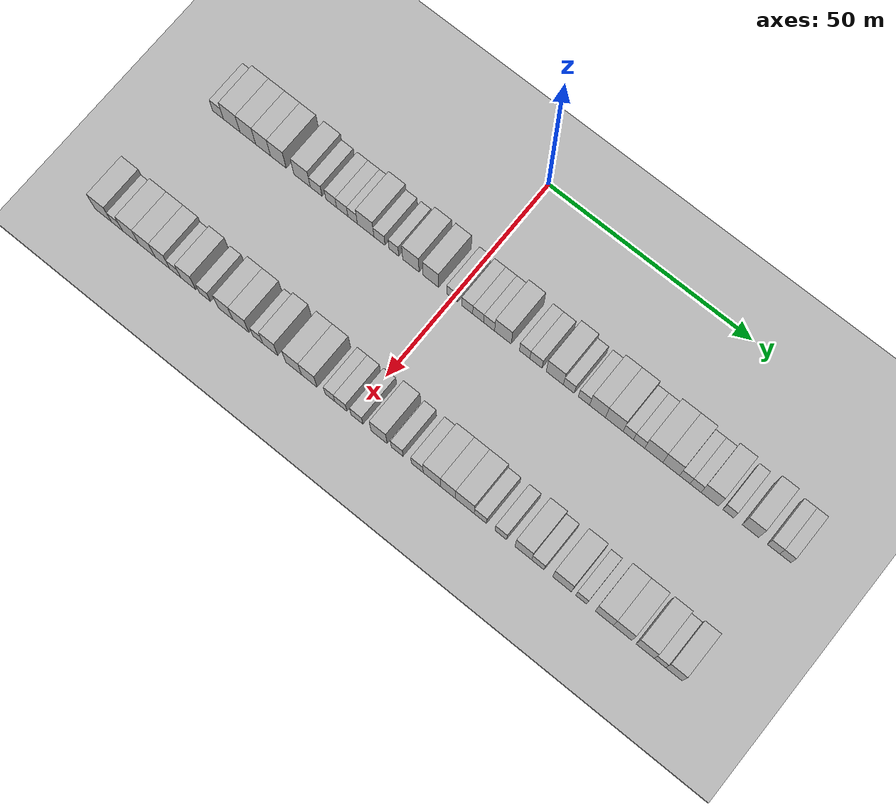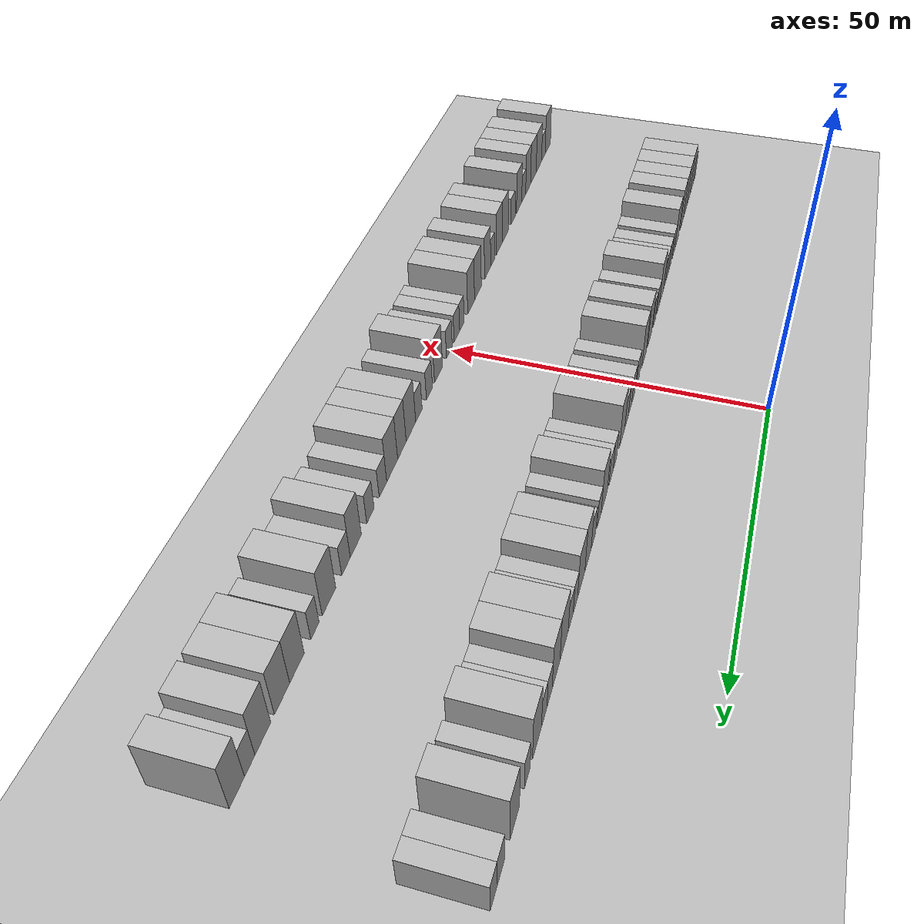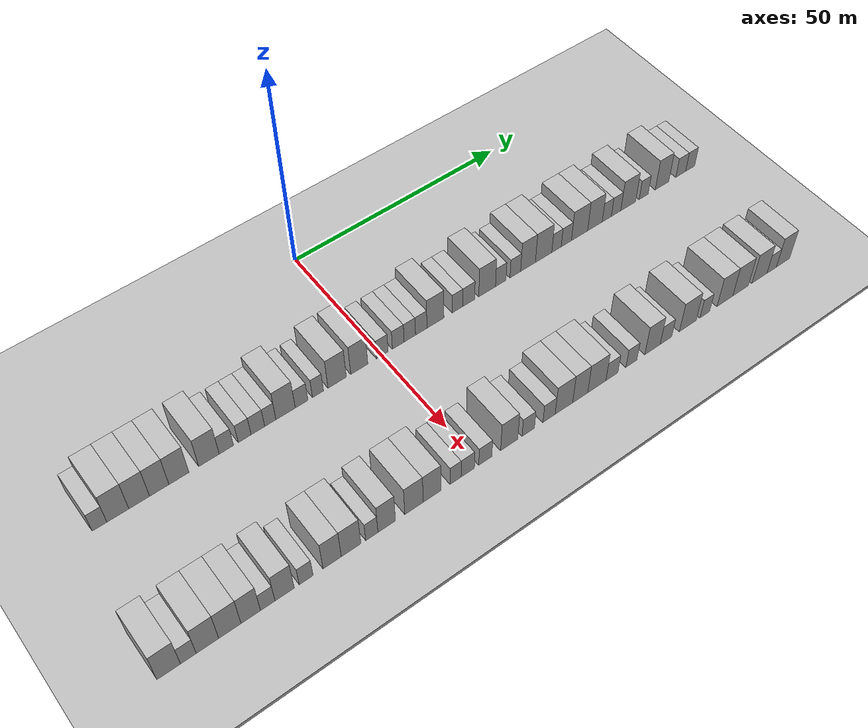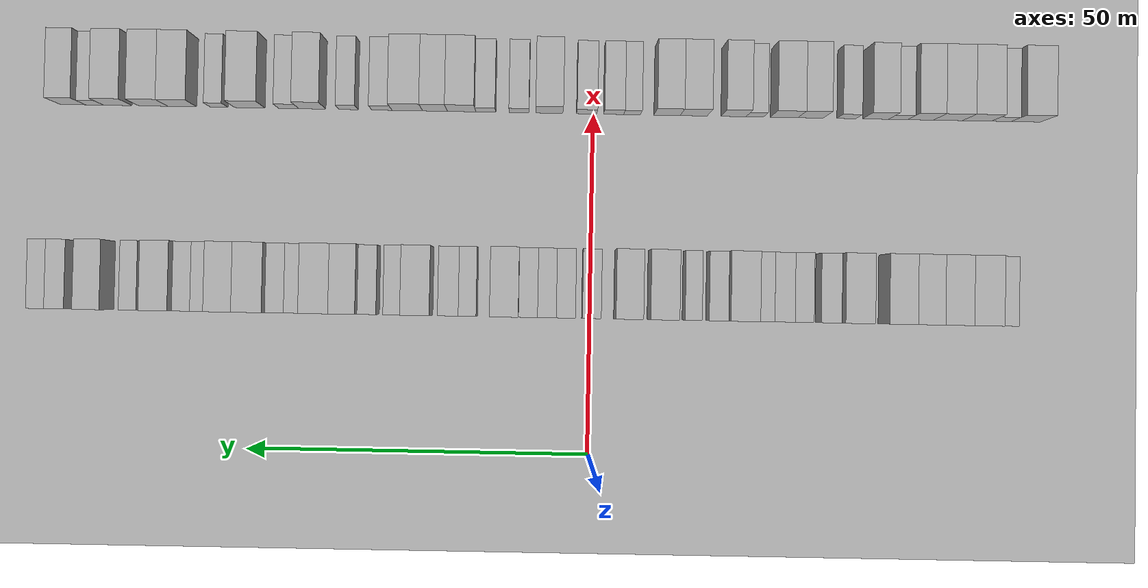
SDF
<sdf version="1.6">
 <world name="default">
  <include><name>ground_plane_1</name><uri>model://HANNAS_ground_plane</uri></include>
  <include>
   <name>ground_plane_2</name>
   <uri>model://HANNAS_ground_plane</uri>
   <pose>100 0 0  0 0 0</pose>
  </include>
  <model name="building_34">
   <static>1</static>
   <pose>25.0000 -59.8880 0 0.000000 0.000000 0.000000</pose>
   <link name="link">
    <pose>0 0 3.00 0 0 0</pose>
    <collision name="collision"><geometry><box><size>10.0000 2.8595 6.0000</size></box></geometry></collision>
    <visual name="visual">
     <cast_shadows>0</cast_shadows>
     <geometry><box><size>10.0000 2.8595 6.0000</size></box></geometry>
     <material>
      <script>
       <uri>model://HANNAS_wall/materials/scripts</uri>
       <uri>model://HANNAS_wall/materials/textures</uri>
       <name>vrc/HANNAS_wall</name>
      </script>
     </material>
    </visual>
   </link>
  </model>
  <model name="building_35">
   <static>1</static>
   <pose>25.0000 -56.3166 0 0.000000 0.000000 0.000000</pose>
   <link name="link">
    <pose>0 0 4.50 0 0 0</pose>
    <collision name="collision"><geometry><box><size>10.0000 4.2833 9.0000</size></box></geometry></collision>
    <visual name="visual">
     <cast_shadows>0</cast_shadows>
     <geometry><box><size>10.0000 4.2833 9.0000</size></box></geometry>
     <material>
      <script>
       <uri>model://HANNAS_wall/materials/scripts</uri>
       <uri>model://HANNAS_wall/materials/textures</uri>
       <name>vrc/HANNAS_wall</name>
      </script>
     </material>
    </visual>
   </link>
  </model>
  <model name="building_36">
   <static>1</static>
   <pose>25.0000 -52.1268 0 0.000000 0.000000 0.000000</pose>
   <link name="link">
    <pose>0 0 4.50 0 0 0</pose>
    <collision name="collision"><geometry><box><size>10.0000 4.0962 9.0000</size></box></geometry></collision>
    <visual name="visual">
     <cast_shadows>0</cast_shadows>
     <geometry><box><size>10.0000 4.0962 9.0000</size></box></geometry>
     <material>
      <script>
       <uri>model://HANNAS_wall/materials/scripts</uri>
       <uri>model://HANNAS_wall/materials/textures</uri>
       <name>vrc/HANNAS_wall</name>
      </script>
     </material>
    </visual>
   </link>
  </model>
  <model name="building_37">
   <static>1</static>
   <pose>25.0000 -48.1381 0 0.000000 0.000000 0.000000</pose>
   <link name="link">
    <pose>0 0 4.50 0 0 0</pose>
    <collision name="collision"><geometry><box><size>10.0000 3.8812 9.0000</size></box></geometry></collision>
    <visual name="visual">
     <cast_shadows>0</cast_shadows>
     <geometry><box><size>10.0000 3.8812 9.0000</size></box></geometry>
     <material>
      <script>
       <uri>model://HANNAS_wall/materials/scripts</uri>
       <uri>model://HANNAS_wall/materials/textures</uri>
       <name>vrc/HANNAS_wall</name>
      </script>
     </material>
    </visual>
   </link>
  </model>
  <model name="building_38">
   <static>1</static>
   <pose>25.0000 -44.1700 0 0.000000 0.000000 0.000000</pose>
   <link name="link">
    <pose>0 0 4.50 0 0 0</pose>
    <collision name="collision"><geometry><box><size>10.0000 4.0550 9.0000</size></box></geometry></collision>
    <visual name="visual">
     <cast_shadows>0</cast_shadows>
     <geometry><box><size>10.0000 4.0550 9.0000</size></box></geometry>
     <material>
      <script>
       <uri>model://HANNAS_wall/materials/scripts</uri>
       <uri>model://HANNAS_wall/materials/textures</uri>
       <name>vrc/HANNAS_wall</name>
      </script>
     </material>
    </visual>
   </link>
  </model>
  <model name="building_39">
   <static>1</static>
   <pose>25.0000 -38.0258 0 0.000000 0.000000 0.000000</pose>
   <link name="link">
    <pose>0 0 4.50 0 0 0</pose>
    <collision name="collision"><geometry><box><size>10.0000 4.2335 9.0000</size></box></geometry></collision>
    <visual name="visual">
     <cast_shadows>0</cast_shadows>
     <geometry><box><size>10.0000 4.2335 9.0000</size></box></geometry>
     <material>
      <script>
       <uri>model://HANNAS_wall/materials/scripts</uri>
       <uri>model://HANNAS_wall/materials/textures</uri>
       <name>vrc/HANNAS_wall</name>
      </script>
     </material>
    </visual>
   </link>
  </model>
  <model name="building_40">
   <static>1</static>
   <pose>25.0000 -34.4165 0 0.000000 0.000000 0.000000</pose>
   <link name="link">
    <pose>0 0 3.00 0 0 0</pose>
    <collision name="collision"><geometry><box><size>10.0000 2.9851 6.0000</size></box></geometry></collision>
    <visual name="visual">
     <cast_shadows>0</cast_shadows>
     <geometry><box><size>10.0000 2.9851 6.0000</size></box></geometry>
     <material>
      <script>
       <uri>model://HANNAS_wall/materials/scripts</uri>
       <uri>model://HANNAS_wall/materials/textures</uri>
       <name>vrc/HANNAS_wall</name>
      </script>
     </material>
    </visual>
   </link>
  </model>
  <model name="building_41">
   <static>1</static>
   <pose>25.0000 -30.5574 0 0.000000 0.000000 0.000000</pose>
   <link name="link">
    <pose>0 0 3.00 0 0 0</pose>
    <collision name="collision"><geometry><box><size>10.0000 2.7331 6.0000</size></box></geometry></collision>
    <visual name="visual">
     <cast_shadows>0</cast_shadows>
     <geometry><box><size>10.0000 2.7331 6.0000</size></box></geometry>
     <material>
      <script>
       <uri>model://HANNAS_wall/materials/scripts</uri>
       <uri>model://HANNAS_wall/materials/textures</uri>
       <name>vrc/HANNAS_wall</name>
      </script>
     </material>
    </visual>
   </link>
  </model>
  <model name="building_42">
   <static>1</static>
   <pose>25.0000 -27.7412 0 0.000000 0.000000 0.000000</pose>
   <link name="link">
    <pose>0 0 3.00 0 0 0</pose>
    <collision name="collision"><geometry><box><size>10.0000 2.8993 6.0000</size></box></geometry></collision>
    <visual name="visual">
     <cast_shadows>0</cast_shadows>
     <geometry><box><size>10.0000 2.8993 6.0000</size></box></geometry>
     <material>
      <script>
       <uri>model://HANNAS_wall/materials/scripts</uri>
       <uri>model://HANNAS_wall/materials/textures</uri>
       <name>vrc/HANNAS_wall</name>
      </script>
     </material>
    </visual>
   </link>
  </model>
  <model name="building_43">
   <static>1</static>
   <pose>25.0000 -25.0822 0 0.000000 0.000000 0.000000</pose>
   <link name="link">
    <pose>0 0 3.00 0 0 0</pose>
    <collision name="collision"><geometry><box><size>10.0000 2.4186 6.0000</size></box></geometry></collision>
    <visual name="visual">
     <cast_shadows>0</cast_shadows>
     <geometry><box><size>10.0000 2.4186 6.0000</size></box></geometry>
     <material>
      <script>
       <uri>model://HANNAS_wall/materials/scripts</uri>
       <uri>model://HANNAS_wall/materials/textures</uri>
       <name>vrc/HANNAS_wall</name>
      </script>
     </material>
    </visual>
   </link>
  </model>
  <model name="building_44">
   <static>1</static>
   <pose>25.0000 -21.7755 0 0.000000 0.000000 0.000000</pose>
   <link name="link">
    <pose>0 0 4.50 0 0 0</pose>
    <collision name="collision"><geometry><box><size>10.0000 4.1948 9.0000</size></box></geometry></collision>
    <visual name="visual">
     <cast_shadows>0</cast_shadows>
     <geometry><box><size>10.0000 4.1948 9.0000</size></box></geometry>
     <material>
      <script>
       <uri>model://HANNAS_wall/materials/scripts</uri>
       <uri>model://HANNAS_wall/materials/textures</uri>
       <name>vrc/HANNAS_wall</name>
      </script>
     </material>
    </visual>
   </link>
  </model>
  <model name="building_45">
   <static>1</static>
   <pose>25.0000 -18.2840 0 0.000000 0.000000 0.000000</pose>
   <link name="link">
    <pose>0 0 3.00 0 0 0</pose>
    <collision name="collision"><geometry><box><size>10.0000 2.7881 6.0000</size></box></geometry></collision>
    <visual name="visual">
     <cast_shadows>0</cast_shadows>
     <geometry><box><size>10.0000 2.7881 6.0000</size></box></geometry>
     <material>
      <script>
       <uri>model://HANNAS_wall/materials/scripts</uri>
       <uri>model://HANNAS_wall/materials/textures</uri>
       <name>vrc/HANNAS_wall</name>
      </script>
     </material>
    </visual>
   </link>
  </model>
  <model name="building_46">
   <static>1</static>
   <pose>25.0000 -14.6642 0 0.000000 0.000000 0.000000</pose>
   <link name="link">
    <pose>0 0 3.00 0 0 0</pose>
    <collision name="collision"><geometry><box><size>10.0000 2.4515 6.0000</size></box></geometry></collision>
    <visual name="visual">
     <cast_shadows>0</cast_shadows>
     <geometry><box><size>10.0000 2.4515 6.0000</size></box></geometry>
     <material>
      <script>
       <uri>model://HANNAS_wall/materials/scripts</uri>
       <uri>model://HANNAS_wall/materials/textures</uri>
       <name>vrc/HANNAS_wall</name>
      </script>
     </material>
    </visual>
   </link>
  </model>
  <model name="building_47">
   <static>1</static>
   <pose>25.0000 -10.3760 0 0.000000 0.000000 0.000000</pose>
   <link name="link">
    <pose>0 0 4.50 0 0 0</pose>
    <collision name="collision"><geometry><box><size>10.0000 4.1250 9.0000</size></box></geometry></collision>
    <visual name="visual">
     <cast_shadows>0</cast_shadows>
     <geometry><box><size>10.0000 4.1250 9.0000</size></box></geometry>
     <material>
      <script>
       <uri>model://HANNAS_wall/materials/scripts</uri>
       <uri>model://HANNAS_wall/materials/textures</uri>
       <name>vrc/HANNAS_wall</name>
      </script>
     </material>
    </visual>
   </link>
  </model>
  <model name="building_48">
   <static>1</static>
   <pose>25.0000 -5.3596 0 0.000000 0.000000 0.000000</pose>
   <link name="link">
    <pose>0 0 4.50 0 0 0</pose>
    <collision name="collision"><geometry><box><size>10.0000 3.9077 9.0000</size></box></geometry></collision>
    <visual name="visual">
     <cast_shadows>0</cast_shadows>
     <geometry><box><size>10.0000 3.9077 9.0000</size></box></geometry>
     <material>
      <script>
       <uri>model://HANNAS_wall/materials/scripts</uri>
       <uri>model://HANNAS_wall/materials/textures</uri>
       <name>vrc/HANNAS_wall</name>
      </script>
     </material>
    </visual>
   </link>
  </model>
  <model name="building_49">
   <static>1</static>
   <pose>25.0000 -0.0575 0 0.000000 0.000000 0.000000</pose>
   <link name="link">
    <pose>0 0 3.00 0 0 0</pose>
    <collision name="collision"><geometry><box><size>10.0000 2.6964 6.0000</size></box></geometry></collision>
    <visual name="visual">
     <cast_shadows>0</cast_shadows>
     <geometry><box><size>10.0000 2.6964 6.0000</size></box></geometry>
     <material>
      <script>
       <uri>model://HANNAS_wall/materials/scripts</uri>
       <uri>model://HANNAS_wall/materials/textures</uri>
       <name>vrc/HANNAS_wall</name>
      </script>
     </material>
    </visual>
   </link>
  </model>
  <model name="building_50">
   <static>1</static>
   <pose>25.0000 3.6659 0 0.000000 0.000000 0.000000</pose>
   <link name="link">
    <pose>0 0 3.00 0 0 0</pose>
    <collision name="collision"><geometry><box><size>10.0000 2.7506 6.0000</size></box></geometry></collision>
    <visual name="visual">
     <cast_shadows>0</cast_shadows>
     <geometry><box><size>10.0000 2.7506 6.0000</size></box></geometry>
     <material>
      <script>
       <uri>model://HANNAS_wall/materials/scripts</uri>
       <uri>model://HANNAS_wall/materials/textures</uri>
       <name>vrc/HANNAS_wall</name>
      </script>
     </material>
    </visual>
   </link>
  </model>
  <model name="building_51">
   <static>1</static>
   <pose>25.0000 6.3850 0 0.000000 0.000000 0.000000</pose>
   <link name="link">
    <pose>0 0 3.00 0 0 0</pose>
    <collision name="collision"><geometry><box><size>10.0000 2.6876 6.0000</size></box></geometry></collision>
    <visual name="visual">
     <cast_shadows>0</cast_shadows>
     <geometry><box><size>10.0000 2.6876 6.0000</size></box></geometry>
     <material>
      <script>
       <uri>model://HANNAS_wall/materials/scripts</uri>
       <uri>model://HANNAS_wall/materials/textures</uri>
       <name>vrc/HANNAS_wall</name>
      </script>
     </material>
    </visual>
   </link>
  </model>
  <model name="building_52">
   <static>1</static>
   <pose>25.0000 9.0959 0 0.000000 0.000000 0.000000</pose>
   <link name="link">
    <pose>0 0 3.00 0 0 0</pose>
    <collision name="collision"><geometry><box><size>10.0000 2.7342 6.0000</size></box></geometry></collision>
    <visual name="visual">
     <cast_shadows>0</cast_shadows>
     <geometry><box><size>10.0000 2.7342 6.0000</size></box></geometry>
     <material>
      <script>
       <uri>model://HANNAS_wall/materials/scripts</uri>
       <uri>model://HANNAS_wall/materials/textures</uri>
       <name>vrc/HANNAS_wall</name>
      </script>
     </material>
    </visual>
   </link>
  </model>
  <model name="building_53">
   <static>1</static>
   <pose>25.0000 12.5020 0 0.000000 0.000000 0.000000</pose>
   <link name="link">
    <pose>0 0 4.50 0 0 0</pose>
    <collision name="collision"><geometry><box><size>10.0000 4.0780 9.0000</size></box></geometry></collision>
    <visual name="visual">
     <cast_shadows>0</cast_shadows>
     <geometry><box><size>10.0000 4.0780 9.0000</size></box></geometry>
     <material>
      <script>
       <uri>model://HANNAS_wall/materials/scripts</uri>
       <uri>model://HANNAS_wall/materials/textures</uri>
       <name>vrc/HANNAS_wall</name>
      </script>
     </material>
    </visual>
   </link>
  </model>
  <model name="building_54">
   <static>1</static>
   <pose>25.0000 17.8254 0 0.000000 0.000000 0.000000</pose>
   <link name="link">
    <pose>0 0 3.00 0 0 0</pose>
    <collision name="collision"><geometry><box><size>10.0000 2.5689 6.0000</size></box></geometry></collision>
    <visual name="visual">
     <cast_shadows>0</cast_shadows>
     <geometry><box><size>10.0000 2.5689 6.0000</size></box></geometry>
     <material>
      <script>
       <uri>model://HANNAS_wall/materials/scripts</uri>
       <uri>model://HANNAS_wall/materials/textures</uri>
       <name>vrc/HANNAS_wall</name>
      </script>
     </material>
    </visual>
   </link>
  </model>
  <model name="building_55">
   <static>1</static>
   <pose>25.0000 20.5942 0 0.000000 0.000000 0.000000</pose>
   <link name="link">
    <pose>0 0 3.00 0 0 0</pose>
    <collision name="collision"><geometry><box><size>10.0000 2.9687 6.0000</size></box></geometry></collision>
    <visual name="visual">
     <cast_shadows>0</cast_shadows>
     <geometry><box><size>10.0000 2.9687 6.0000</size></box></geometry>
     <material>
      <script>
       <uri>model://HANNAS_wall/materials/scripts</uri>
       <uri>model://HANNAS_wall/materials/textures</uri>
       <name>vrc/HANNAS_wall</name>
      </script>
     </material>
    </visual>
   </link>
  </model>
  <model name="building_56">
   <static>1</static>
   <pose>25.0000 25.1673 0 0.000000 0.000000 0.000000</pose>
   <link name="link">
    <pose>0 0 4.50 0 0 0</pose>
    <collision name="collision"><geometry><box><size>10.0000 4.1775 9.0000</size></box></geometry></collision>
    <visual name="visual">
     <cast_shadows>0</cast_shadows>
     <geometry><box><size>10.0000 4.1775 9.0000</size></box></geometry>
     <material>
      <script>
       <uri>model://HANNAS_wall/materials/scripts</uri>
       <uri>model://HANNAS_wall/materials/textures</uri>
       <name>vrc/HANNAS_wall</name>
      </script>
     </material>
    </visual>
   </link>
  </model>
  <model name="building_57">
   <static>1</static>
   <pose>25.0000 28.5802 0 0.000000 0.000000 0.000000</pose>
   <link name="link">
    <pose>0 0 3.00 0 0 0</pose>
    <collision name="collision"><geometry><box><size>10.0000 2.6483 6.0000</size></box></geometry></collision>
    <visual name="visual">
     <cast_shadows>0</cast_shadows>
     <geometry><box><size>10.0000 2.6483 6.0000</size></box></geometry>
     <material>
      <script>
       <uri>model://HANNAS_wall/materials/scripts</uri>
       <uri>model://HANNAS_wall/materials/textures</uri>
       <name>vrc/HANNAS_wall</name>
      </script>
     </material>
    </visual>
   </link>
  </model>
  <model name="building_58">
   <static>1</static>
   <pose>25.0000 32.2632 0 0.000000 0.000000 0.000000</pose>
   <link name="link">
    <pose>0 0 3.00 0 0 0</pose>
    <collision name="collision"><geometry><box><size>10.0000 2.7177 6.0000</size></box></geometry></collision>
    <visual name="visual">
     <cast_shadows>0</cast_shadows>
     <geometry><box><size>10.0000 2.7177 6.0000</size></box></geometry>
     <material>
      <script>
       <uri>model://HANNAS_wall/materials/scripts</uri>
       <uri>model://HANNAS_wall/materials/textures</uri>
       <name>vrc/HANNAS_wall</name>
      </script>
     </material>
    </visual>
   </link>
  </model>
  <model name="building_59">
   <static>1</static>
   <pose>25.0000 35.5286 0 0.000000 0.000000 0.000000</pose>
   <link name="link">
    <pose>0 0 4.50 0 0 0</pose>
    <collision name="collision"><geometry><box><size>10.0000 3.8130 9.0000</size></box></geometry></collision>
    <visual name="visual">
     <cast_shadows>0</cast_shadows>
     <geometry><box><size>10.0000 3.8130 9.0000</size></box></geometry>
     <material>
      <script>
       <uri>model://HANNAS_wall/materials/scripts</uri>
       <uri>model://HANNAS_wall/materials/textures</uri>
       <name>vrc/HANNAS_wall</name>
      </script>
     </material>
    </visual>
   </link>
  </model>
  <model name="building_60">
   <static>1</static>
   <pose>25.0000 39.5603 0 0.000000 0.000000 0.000000</pose>
   <link name="link">
    <pose>0 0 4.50 0 0 0</pose>
    <collision name="collision"><geometry><box><size>10.0000 4.2505 9.0000</size></box></geometry></collision>
    <visual name="visual">
     <cast_shadows>0</cast_shadows>
     <geometry><box><size>10.0000 4.2505 9.0000</size></box></geometry>
     <material>
      <script>
       <uri>model://HANNAS_wall/materials/scripts</uri>
       <uri>model://HANNAS_wall/materials/textures</uri>
       <name>vrc/HANNAS_wall</name>
      </script>
     </material>
    </visual>
   </link>
  </model>
  <model name="building_61">
   <static>1</static>
   <pose>25.0000 42.9211 0 0.000000 0.000000 0.000000</pose>
   <link name="link">
    <pose>0 0 3.00 0 0 0</pose>
    <collision name="collision"><geometry><box><size>10.0000 2.4709 6.0000</size></box></geometry></collision>
    <visual name="visual">
     <cast_shadows>0</cast_shadows>
     <geometry><box><size>10.0000 2.4709 6.0000</size></box></geometry>
     <material>
      <script>
       <uri>model://HANNAS_wall/materials/scripts</uri>
       <uri>model://HANNAS_wall/materials/textures</uri>
       <name>vrc/HANNAS_wall</name>
      </script>
     </material>
    </visual>
   </link>
  </model>
  <model name="building_62">
   <static>1</static>
   <pose>25.0000 45.5056 0 0.000000 0.000000 0.000000</pose>
   <link name="link">
    <pose>0 0 3.00 0 0 0</pose>
    <collision name="collision"><geometry><box><size>10.0000 2.6981 6.0000</size></box></geometry></collision>
    <visual name="visual">
     <cast_shadows>0</cast_shadows>
     <geometry><box><size>10.0000 2.6981 6.0000</size></box></geometry>
     <material>
      <script>
       <uri>model://HANNAS_wall/materials/scripts</uri>
       <uri>model://HANNAS_wall/materials/textures</uri>
       <name>vrc/HANNAS_wall</name>
      </script>
     </material>
    </visual>
   </link>
  </model>
  <model name="building_63">
   <static>1</static>
   <pose>25.0000 49.0194 0 0.000000 0.000000 0.000000</pose>
   <link name="link">
    <pose>0 0 4.50 0 0 0</pose>
    <collision name="collision"><geometry><box><size>10.0000 4.3296 9.0000</size></box></geometry></collision>
    <visual name="visual">
     <cast_shadows>0</cast_shadows>
     <geometry><box><size>10.0000 4.3296 9.0000</size></box></geometry>
     <material>
      <script>
       <uri>model://HANNAS_wall/materials/scripts</uri>
       <uri>model://HANNAS_wall/materials/textures</uri>
       <name>vrc/HANNAS_wall</name>
      </script>
     </material>
    </visual>
   </link>
  </model>
  <model name="building_64">
   <static>1</static>
   <pose>25.0000 53.1557 0 0.000000 0.000000 0.000000</pose>
   <link name="link">
    <pose>0 0 4.50 0 0 0</pose>
    <collision name="collision"><geometry><box><size>10.0000 3.9429 9.0000</size></box></geometry></collision>
    <visual name="visual">
     <cast_shadows>0</cast_shadows>
     <geometry><box><size>10.0000 3.9429 9.0000</size></box></geometry>
     <material>
      <script>
       <uri>model://HANNAS_wall/materials/scripts</uri>
       <uri>model://HANNAS_wall/materials/textures</uri>
       <name>vrc/HANNAS_wall</name>
      </script>
     </material>
    </visual>
   </link>
  </model>
  <model name="building_65">
   <static>1</static>
   <pose>25.0000 56.3650 0 0.000000 0.000000 0.000000</pose>
   <link name="link">
    <pose>0 0 3.00 0 0 0</pose>
    <collision name="collision"><geometry><box><size>10.0000 2.4758 6.0000</size></box></geometry></collision>
    <visual name="visual">
     <cast_shadows>0</cast_shadows>
     <geometry><box><size>10.0000 2.4758 6.0000</size></box></geometry>
     <material>
      <script>
       <uri>model://HANNAS_wall/materials/scripts</uri>
       <uri>model://HANNAS_wall/materials/textures</uri>
       <name>vrc/HANNAS_wall</name>
      </script>
     </material>
    </visual>
   </link>
  </model>
  <model name="building_66">
   <static>1</static>
   <pose>25.0000 58.9011 0 0.000000 0.000000 0.000000</pose>
   <link name="link">
    <pose>0 0 3.00 0 0 0</pose>
    <collision name="collision"><geometry><box><size>10.0000 2.5965 6.0000</size></box></geometry></collision>
    <visual name="visual">
     <cast_shadows>0</cast_shadows>
     <geometry><box><size>10.0000 2.5965 6.0000</size></box></geometry>
     <material>
      <script>
       <uri>model://HANNAS_wall/materials/scripts</uri>
       <uri>model://HANNAS_wall/materials/textures</uri>
       <name>vrc/HANNAS_wall</name>
      </script>
     </material>
    </visual>
   </link>
  </model>
  <model name="building_67">
   <static>1</static>
   <pose>25.0000 62.2510 0 0.000000 0.000000 0.000000</pose>
   <link name="link">
    <pose>0 0 4.50 0 0 0</pose>
    <collision name="collision"><geometry><box><size>10.0000 4.1032 9.0000</size></box></geometry></collision>
    <visual name="visual">
     <cast_shadows>0</cast_shadows>
     <geometry><box><size>10.0000 4.1032 9.0000</size></box></geometry>
     <material>
      <script>
       <uri>model://HANNAS_wall/materials/scripts</uri>
       <uri>model://HANNAS_wall/materials/textures</uri>
       <name>vrc/HANNAS_wall</name>
      </script>
     </material>
    </visual>
   </link>
  </model>
  <model name="building_68">
   <static>1</static>
   <pose>25.0000 66.5602 0 0.000000 0.000000 0.000000</pose>
   <link name="link">
    <pose>0 0 3.00 0 0 0</pose>
    <collision name="collision"><geometry><box><size>10.0000 2.5153 6.0000</size></box></geometry></collision>
    <visual name="visual">
     <cast_shadows>0</cast_shadows>
     <geometry><box><size>10.0000 2.5153 6.0000</size></box></geometry>
     <material>
      <script>
       <uri>model://HANNAS_wall/materials/scripts</uri>
       <uri>model://HANNAS_wall/materials/textures</uri>
       <name>vrc/HANNAS_wall</name>
      </script>
     </material>
    </visual>
   </link>
  </model>
  <model name="building_69">
   <static>1</static>
   <pose>25.0000 71.7442 0 0.000000 0.000000 0.000000</pose>
   <link name="link">
    <pose>0 0 4.50 0 0 0</pose>
    <collision name="collision"><geometry><box><size>10.0000 3.8527 9.0000</size></box></geometry></collision>
    <visual name="visual">
     <cast_shadows>0</cast_shadows>
     <geometry><box><size>10.0000 3.8527 9.0000</size></box></geometry>
     <material>
      <script>
       <uri>model://HANNAS_wall/materials/scripts</uri>
       <uri>model://HANNAS_wall/materials/textures</uri>
       <name>vrc/HANNAS_wall</name>
      </script>
     </material>
    </visual>
   </link>
  </model>
  <model name="building_70">
   <static>1</static>
   <pose>25.0000 77.0925 0 0.000000 0.000000 0.000000</pose>
   <link name="link">
    <pose>0 0 3.00 0 0 0</pose>
    <collision name="collision"><geometry><box><size>10.0000 2.8439 6.0000</size></box></geometry></collision>
    <visual name="visual">
     <cast_shadows>0</cast_shadows>
     <geometry><box><size>10.0000 2.8439 6.0000</size></box></geometry>
     <material>
      <script>
       <uri>model://HANNAS_wall/materials/scripts</uri>
       <uri>model://HANNAS_wall/materials/textures</uri>
       <name>vrc/HANNAS_wall</name>
      </script>
     </material>
    </visual>
   </link>
  </model>
  <model name="building_71">
   <static>1</static>
   <pose>25.0000 79.8165 0 0.000000 0.000000 0.000000</pose>
   <link name="link">
    <pose>0 0 3.00 0 0 0</pose>
    <collision name="collision"><geometry><box><size>10.0000 2.6042 6.0000</size></box></geometry></collision>
    <visual name="visual">
     <cast_shadows>0</cast_shadows>
     <geometry><box><size>10.0000 2.6042 6.0000</size></box></geometry>
     <material>
      <script>
       <uri>model://HANNAS_wall/materials/scripts</uri>
       <uri>model://HANNAS_wall/materials/textures</uri>
       <name>vrc/HANNAS_wall</name>
      </script>
     </material>
    </visual>
   </link>
  </model>
  <model name="building_150">
   <static>1</static>
   <pose>55.0000 -63.5235 0 0.000000 0.000000 0.000000</pose>
   <link name="link">
    <pose>0 0 4.50 0 0 0</pose>
    <collision name="collision"><geometry><box><size>10.0000 4.3285 9.0000</size></box></geometry></collision>
    <visual name="visual">
     <cast_shadows>0</cast_shadows>
     <geometry><box><size>10.0000 4.3285 9.0000</size></box></geometry>
     <material>
      <script>
       <uri>model://HANNAS_wall/materials/scripts</uri>
       <uri>model://HANNAS_wall/materials/textures</uri>
       <name>vrc/HANNAS_wall</name>
      </script>
     </material>
    </visual>
   </link>
  </model>
  <model name="building_151">
   <static>1</static>
   <pose>55.0000 -59.9022 0 0.000000 0.000000 0.000000</pose>
   <link name="link">
    <pose>0 0 3.00 0 0 0</pose>
    <collision name="collision"><geometry><box><size>10.0000 2.9142 6.0000</size></box></geometry></collision>
    <visual name="visual">
     <cast_shadows>0</cast_shadows>
     <geometry><box><size>10.0000 2.9142 6.0000</size></box></geometry>
     <material>
      <script>
       <uri>model://HANNAS_wall/materials/scripts</uri>
       <uri>model://HANNAS_wall/materials/textures</uri>
       <name>vrc/HANNAS_wall</name>
      </script>
     </material>
    </visual>
   </link>
  </model>
  <model name="building_152">
   <static>1</static>
   <pose>55.0000 -56.3239 0 0.000000 0.000000 0.000000</pose>
   <link name="link">
    <pose>0 0 4.50 0 0 0</pose>
    <collision name="collision"><geometry><box><size>10.0000 4.2424 9.0000</size></box></geometry></collision>
    <visual name="visual">
     <cast_shadows>0</cast_shadows>
     <geometry><box><size>10.0000 4.2424 9.0000</size></box></geometry>
     <material>
      <script>
       <uri>model://HANNAS_wall/materials/scripts</uri>
       <uri>model://HANNAS_wall/materials/textures</uri>
       <name>vrc/HANNAS_wall</name>
      </script>
     </material>
    </visual>
   </link>
  </model>
  <model name="building_153">
   <static>1</static>
   <pose>55.0000 -52.0752 0 0.000000 0.000000 0.000000</pose>
   <link name="link">
    <pose>0 0 4.50 0 0 0</pose>
    <collision name="collision"><geometry><box><size>10.0000 4.2550 9.0000</size></box></geometry></collision>
    <visual name="visual">
     <cast_shadows>0</cast_shadows>
     <geometry><box><size>10.0000 4.2550 9.0000</size></box></geometry>
     <material>
      <script>
       <uri>model://HANNAS_wall/materials/scripts</uri>
       <uri>model://HANNAS_wall/materials/textures</uri>
       <name>vrc/HANNAS_wall</name>
      </script>
     </material>
    </visual>
   </link>
  </model>
  <model name="building_154">
   <static>1</static>
   <pose>55.0000 -48.0642 0 0.000000 0.000000 0.000000</pose>
   <link name="link">
    <pose>0 0 4.50 0 0 0</pose>
    <collision name="collision"><geometry><box><size>10.0000 3.7671 9.0000</size></box></geometry></collision>
    <visual name="visual">
     <cast_shadows>0</cast_shadows>
     <geometry><box><size>10.0000 3.7671 9.0000</size></box></geometry>
     <material>
      <script>
       <uri>model://HANNAS_wall/materials/scripts</uri>
       <uri>model://HANNAS_wall/materials/textures</uri>
       <name>vrc/HANNAS_wall</name>
      </script>
     </material>
    </visual>
   </link>
  </model>
  <model name="building_155">
   <static>1</static>
   <pose>55.0000 -44.7633 0 0.000000 0.000000 0.000000</pose>
   <link name="link">
    <pose>0 0 3.00 0 0 0</pose>
    <collision name="collision"><geometry><box><size>10.0000 2.8347 6.0000</size></box></geometry></collision>
    <visual name="visual">
     <cast_shadows>0</cast_shadows>
     <geometry><box><size>10.0000 2.8347 6.0000</size></box></geometry>
     <material>
      <script>
       <uri>model://HANNAS_wall/materials/scripts</uri>
       <uri>model://HANNAS_wall/materials/textures</uri>
       <name>vrc/HANNAS_wall</name>
      </script>
     </material>
    </visual>
   </link>
  </model>
  <model name="building_156">
   <static>1</static>
   <pose>55.0000 -41.4434 0 0.000000 0.000000 0.000000</pose>
   <link name="link">
    <pose>0 0 4.50 0 0 0</pose>
    <collision name="collision"><geometry><box><size>10.0000 3.8053 9.0000</size></box></geometry></collision>
    <visual name="visual">
     <cast_shadows>0</cast_shadows>
     <geometry><box><size>10.0000 3.8053 9.0000</size></box></geometry>
     <material>
      <script>
       <uri>model://HANNAS_wall/materials/scripts</uri>
       <uri>model://HANNAS_wall/materials/textures</uri>
       <name>vrc/HANNAS_wall</name>
      </script>
     </material>
    </visual>
   </link>
  </model>
  <model name="building_157">
   <static>1</static>
   <pose>55.0000 -37.1497 0 0.000000 0.000000 0.000000</pose>
   <link name="link">
    <pose>0 0 3.00 0 0 0</pose>
    <collision name="collision"><geometry><box><size>10.0000 2.7821 6.0000</size></box></geometry></collision>
    <visual name="visual">
     <cast_shadows>0</cast_shadows>
     <geometry><box><size>10.0000 2.7821 6.0000</size></box></geometry>
     <material>
      <script>
       <uri>model://HANNAS_wall/materials/scripts</uri>
       <uri>model://HANNAS_wall/materials/textures</uri>
       <name>vrc/HANNAS_wall</name>
      </script>
     </material>
    </visual>
   </link>
  </model>
  <model name="building_158">
   <static>1</static>
   <pose>55.0000 -31.8937 0 0.000000 0.000000 0.000000</pose>
   <link name="link">
    <pose>0 0 4.50 0 0 0</pose>
    <collision name="collision"><geometry><box><size>10.0000 3.7298 9.0000</size></box></geometry></collision>
    <visual name="visual">
     <cast_shadows>0</cast_shadows>
     <geometry><box><size>10.0000 3.7298 9.0000</size></box></geometry>
     <material>
      <script>
       <uri>model://HANNAS_wall/materials/scripts</uri>
       <uri>model://HANNAS_wall/materials/textures</uri>
       <name>vrc/HANNAS_wall</name>
      </script>
     </material>
    </visual>
   </link>
  </model>
  <model name="building_159">
   <static>1</static>
   <pose>55.0000 -28.0021 0 0.000000 0.000000 0.000000</pose>
   <link name="link">
    <pose>0 0 4.50 0 0 0</pose>
    <collision name="collision"><geometry><box><size>10.0000 4.0533 9.0000</size></box></geometry></collision>
    <visual name="visual">
     <cast_shadows>0</cast_shadows>
     <geometry><box><size>10.0000 4.0533 9.0000</size></box></geometry>
     <material>
      <script>
       <uri>model://HANNAS_wall/materials/scripts</uri>
       <uri>model://HANNAS_wall/materials/textures</uri>
       <name>vrc/HANNAS_wall</name>
      </script>
     </material>
    </visual>
   </link>
  </model>
  <model name="building_160">
   <static>1</static>
   <pose>55.0000 -23.6914 0 0.000000 0.000000 0.000000</pose>
   <link name="link">
    <pose>0 0 3.00 0 0 0</pose>
    <collision name="collision"><geometry><box><size>10.0000 2.5681 6.0000</size></box></geometry></collision>
    <visual name="visual">
     <cast_shadows>0</cast_shadows>
     <geometry><box><size>10.0000 2.5681 6.0000</size></box></geometry>
     <material>
      <script>
       <uri>model://HANNAS_wall/materials/scripts</uri>
       <uri>model://HANNAS_wall/materials/textures</uri>
       <name>vrc/HANNAS_wall</name>
      </script>
     </material>
    </visual>
   </link>
  </model>
  <model name="building_161">
   <static>1</static>
   <pose>55.0000 -20.5537 0 0.000000 0.000000 0.000000</pose>
   <link name="link">
    <pose>0 0 4.50 0 0 0</pose>
    <collision name="collision"><geometry><box><size>10.0000 3.7073 9.0000</size></box></geometry></collision>
    <visual name="visual">
     <cast_shadows>0</cast_shadows>
     <geometry><box><size>10.0000 3.7073 9.0000</size></box></geometry>
     <material>
      <script>
       <uri>model://HANNAS_wall/materials/scripts</uri>
       <uri>model://HANNAS_wall/materials/textures</uri>
       <name>vrc/HANNAS_wall</name>
      </script>
     </material>
    </visual>
   </link>
  </model>
  <model name="building_162">
   <static>1</static>
   <pose>55.0000 -14.7100 0 0.000000 0.000000 0.000000</pose>
   <link name="link">
    <pose>0 0 4.50 0 0 0</pose>
    <collision name="collision"><geometry><box><size>10.0000 3.9802 9.0000</size></box></geometry></collision>
    <visual name="visual">
     <cast_shadows>0</cast_shadows>
     <geometry><box><size>10.0000 3.9802 9.0000</size></box></geometry>
     <material>
      <script>
       <uri>model://HANNAS_wall/materials/scripts</uri>
       <uri>model://HANNAS_wall/materials/textures</uri>
       <name>vrc/HANNAS_wall</name>
      </script>
     </material>
    </visual>
   </link>
  </model>
  <model name="building_163">
   <static>1</static>
   <pose>55.0000 -10.7815 0 0.000000 0.000000 0.000000</pose>
   <link name="link">
    <pose>0 0 4.50 0 0 0</pose>
    <collision name="collision"><geometry><box><size>10.0000 3.8767 9.0000</size></box></geometry></collision>
    <visual name="visual">
     <cast_shadows>0</cast_shadows>
     <geometry><box><size>10.0000 3.8767 9.0000</size></box></geometry>
     <material>
      <script>
       <uri>model://HANNAS_wall/materials/scripts</uri>
       <uri>model://HANNAS_wall/materials/textures</uri>
       <name>vrc/HANNAS_wall</name>
      </script>
     </material>
    </visual>
   </link>
  </model>
  <model name="building_164">
   <static>1</static>
   <pose>55.0000 -5.6161 0 0.000000 0.000000 0.000000</pose>
   <link name="link">
    <pose>0 0 3.00 0 0 0</pose>
    <collision name="collision"><geometry><box><size>10.0000 2.4542 6.0000</size></box></geometry></collision>
    <visual name="visual">
     <cast_shadows>0</cast_shadows>
     <geometry><box><size>10.0000 2.4542 6.0000</size></box></geometry>
     <material>
      <script>
       <uri>model://HANNAS_wall/materials/scripts</uri>
       <uri>model://HANNAS_wall/materials/textures</uri>
       <name>vrc/HANNAS_wall</name>
      </script>
     </material>
    </visual>
   </link>
  </model>
  <model name="building_165">
   <static>1</static>
   <pose>55.0000 -2.9054 0 0.000000 0.000000 0.000000</pose>
   <link name="link">
    <pose>0 0 3.00 0 0 0</pose>
    <collision name="collision"><geometry><box><size>10.0000 2.9671 6.0000</size></box></geometry></collision>
    <visual name="visual">
     <cast_shadows>0</cast_shadows>
     <geometry><box><size>10.0000 2.9671 6.0000</size></box></geometry>
     <material>
      <script>
       <uri>model://HANNAS_wall/materials/scripts</uri>
       <uri>model://HANNAS_wall/materials/textures</uri>
       <name>vrc/HANNAS_wall</name>
      </script>
     </material>
    </visual>
   </link>
  </model>
  <model name="building_166">
   <static>1</static>
   <pose>55.0000 1.0634 0 0.000000 0.000000 0.000000</pose>
   <link name="link">
    <pose>0 0 3.00 0 0 0</pose>
    <collision name="collision"><geometry><box><size>10.0000 2.9705 6.0000</size></box></geometry></collision>
    <visual name="visual">
     <cast_shadows>0</cast_shadows>
     <geometry><box><size>10.0000 2.9705 6.0000</size></box></geometry>
     <material>
      <script>
       <uri>model://HANNAS_wall/materials/scripts</uri>
       <uri>model://HANNAS_wall/materials/textures</uri>
       <name>vrc/HANNAS_wall</name>
      </script>
     </material>
    </visual>
   </link>
  </model>
  <model name="building_167">
   <static>1</static>
   <pose>55.0000 6.5273 0 0.000000 0.000000 0.000000</pose>
   <link name="link">
    <pose>0 0 4.50 0 0 0</pose>
    <collision name="collision"><geometry><box><size>10.0000 3.9575 9.0000</size></box></geometry></collision>
    <visual name="visual">
     <cast_shadows>0</cast_shadows>
     <geometry><box><size>10.0000 3.9575 9.0000</size></box></geometry>
     <material>
      <script>
       <uri>model://HANNAS_wall/materials/scripts</uri>
       <uri>model://HANNAS_wall/materials/textures</uri>
       <name>vrc/HANNAS_wall</name>
      </script>
     </material>
    </visual>
   </link>
  </model>
  <model name="building_168">
   <static>1</static>
   <pose>55.0000 10.9510 0 0.000000 0.000000 0.000000</pose>
   <link name="link">
    <pose>0 0 3.00 0 0 0</pose>
    <collision name="collision"><geometry><box><size>10.0000 2.8898 6.0000</size></box></geometry></collision>
    <visual name="visual">
     <cast_shadows>0</cast_shadows>
     <geometry><box><size>10.0000 2.8898 6.0000</size></box></geometry>
     <material>
      <script>
       <uri>model://HANNAS_wall/materials/scripts</uri>
       <uri>model://HANNAS_wall/materials/textures</uri>
       <name>vrc/HANNAS_wall</name>
      </script>
     </material>
    </visual>
   </link>
  </model>
  <model name="building_169">
   <static>1</static>
   <pose>55.0000 15.8556 0 0.000000 0.000000 0.000000</pose>
   <link name="link">
    <pose>0 0 3.00 0 0 0</pose>
    <collision name="collision"><geometry><box><size>10.0000 2.9193 6.0000</size></box></geometry></collision>
    <visual name="visual">
     <cast_shadows>0</cast_shadows>
     <geometry><box><size>10.0000 2.9193 6.0000</size></box></geometry>
     <material>
      <script>
       <uri>model://HANNAS_wall/materials/scripts</uri>
       <uri>model://HANNAS_wall/materials/textures</uri>
       <name>vrc/HANNAS_wall</name>
      </script>
     </material>
    </visual>
   </link>
  </model>
  <model name="building_170">
   <static>1</static>
   <pose>55.0000 19.4143 0 0.000000 0.000000 0.000000</pose>
   <link name="link">
    <pose>0 0 4.50 0 0 0</pose>
    <collision name="collision"><geometry><box><size>10.0000 4.1982 9.0000</size></box></geometry></collision>
    <visual name="visual">
     <cast_shadows>0</cast_shadows>
     <geometry><box><size>10.0000 4.1982 9.0000</size></box></geometry>
     <material>
      <script>
       <uri>model://HANNAS_wall/materials/scripts</uri>
       <uri>model://HANNAS_wall/materials/textures</uri>
       <name>vrc/HANNAS_wall</name>
      </script>
     </material>
    </visual>
   </link>
  </model>
  <model name="building_171">
   <static>1</static>
   <pose>55.0000 23.3386 0 0.000000 0.000000 0.000000</pose>
   <link name="link">
    <pose>0 0 4.50 0 0 0</pose>
    <collision name="collision"><geometry><box><size>10.0000 3.6504 9.0000</size></box></geometry></collision>
    <visual name="visual">
     <cast_shadows>0</cast_shadows>
     <geometry><box><size>10.0000 3.6504 9.0000</size></box></geometry>
     <material>
      <script>
       <uri>model://HANNAS_wall/materials/scripts</uri>
       <uri>model://HANNAS_wall/materials/textures</uri>
       <name>vrc/HANNAS_wall</name>
      </script>
     </material>
    </visual>
   </link>
  </model>
  <model name="building_172">
   <static>1</static>
   <pose>55.0000 27.4022 0 0.000000 0.000000 0.000000</pose>
   <link name="link">
    <pose>0 0 4.50 0 0 0</pose>
    <collision name="collision"><geometry><box><size>10.0000 4.4769 9.0000</size></box></geometry></collision>
    <visual name="visual">
     <cast_shadows>0</cast_shadows>
     <geometry><box><size>10.0000 4.4769 9.0000</size></box></geometry>
     <material>
      <script>
       <uri>model://HANNAS_wall/materials/scripts</uri>
       <uri>model://HANNAS_wall/materials/textures</uri>
       <name>vrc/HANNAS_wall</name>
      </script>
     </material>
    </visual>
   </link>
  </model>
  <model name="building_173">
   <static>1</static>
   <pose>55.0000 31.1346 0 0.000000 0.000000 0.000000</pose>
   <link name="link">
    <pose>0 0 3.00 0 0 0</pose>
    <collision name="collision"><geometry><box><size>10.0000 2.9877 6.0000</size></box></geometry></collision>
    <visual name="visual">
     <cast_shadows>0</cast_shadows>
     <geometry><box><size>10.0000 2.9877 6.0000</size></box></geometry>
     <material>
      <script>
       <uri>model://HANNAS_wall/materials/scripts</uri>
       <uri>model://HANNAS_wall/materials/textures</uri>
       <name>vrc/HANNAS_wall</name>
      </script>
     </material>
    </visual>
   </link>
  </model>
  <model name="building_174">
   <static>1</static>
   <pose>55.0000 36.0161 0 0.000000 0.000000 0.000000</pose>
   <link name="link">
    <pose>0 0 3.00 0 0 0</pose>
    <collision name="collision"><geometry><box><size>10.0000 2.7753 6.0000</size></box></geometry></collision>
    <visual name="visual">
     <cast_shadows>0</cast_shadows>
     <geometry><box><size>10.0000 2.7753 6.0000</size></box></geometry>
     <material>
      <script>
       <uri>model://HANNAS_wall/materials/scripts</uri>
       <uri>model://HANNAS_wall/materials/textures</uri>
       <name>vrc/HANNAS_wall</name>
      </script>
     </material>
    </visual>
   </link>
  </model>
  <model name="building_175">
   <static>1</static>
   <pose>55.0000 41.3854 0 0.000000 0.000000 0.000000</pose>
   <link name="link">
    <pose>0 0 4.50 0 0 0</pose>
    <collision name="collision"><geometry><box><size>10.0000 3.9632 9.0000</size></box></geometry></collision>
    <visual name="visual">
     <cast_shadows>0</cast_shadows>
     <geometry><box><size>10.0000 3.9632 9.0000</size></box></geometry>
     <material>
      <script>
       <uri>model://HANNAS_wall/materials/scripts</uri>
       <uri>model://HANNAS_wall/materials/textures</uri>
       <name>vrc/HANNAS_wall</name>
      </script>
     </material>
    </visual>
   </link>
  </model>
  <model name="building_176">
   <static>1</static>
   <pose>55.0000 44.8586 0 0.000000 0.000000 0.000000</pose>
   <link name="link">
    <pose>0 0 3.00 0 0 0</pose>
    <collision name="collision"><geometry><box><size>10.0000 2.9833 6.0000</size></box></geometry></collision>
    <visual name="visual">
     <cast_shadows>0</cast_shadows>
     <geometry><box><size>10.0000 2.9833 6.0000</size></box></geometry>
     <material>
      <script>
       <uri>model://HANNAS_wall/materials/scripts</uri>
       <uri>model://HANNAS_wall/materials/textures</uri>
       <name>vrc/HANNAS_wall</name>
      </script>
     </material>
    </visual>
   </link>
  </model>
  <model name="building_177">
   <static>1</static>
   <pose>55.0000 50.5716 0 0.000000 0.000000 0.000000</pose>
   <link name="link">
    <pose>0 0 4.50 0 0 0</pose>
    <collision name="collision"><geometry><box><size>10.0000 4.4426 9.0000</size></box></geometry></collision>
    <visual name="visual">
     <cast_shadows>0</cast_shadows>
     <geometry><box><size>10.0000 4.4426 9.0000</size></box></geometry>
     <material>
      <script>
       <uri>model://HANNAS_wall/materials/scripts</uri>
       <uri>model://HANNAS_wall/materials/textures</uri>
       <name>vrc/HANNAS_wall</name>
      </script>
     </material>
    </visual>
   </link>
  </model>
  <model name="building_178">
   <static>1</static>
   <pose>55.0000 55.0859 0 0.000000 0.000000 0.000000</pose>
   <link name="link">
    <pose>0 0 3.00 0 0 0</pose>
    <collision name="collision"><geometry><box><size>10.0000 2.5860 6.0000</size></box></geometry></collision>
    <visual name="visual">
     <cast_shadows>0</cast_shadows>
     <geometry><box><size>10.0000 2.5860 6.0000</size></box></geometry>
     <material>
      <script>
       <uri>model://HANNAS_wall/materials/scripts</uri>
       <uri>model://HANNAS_wall/materials/textures</uri>
       <name>vrc/HANNAS_wall</name>
      </script>
     </material>
    </visual>
   </link>
  </model>
  <model name="building_179">
   <static>1</static>
   <pose>55.0000 60.5092 0 0.000000 0.000000 0.000000</pose>
   <link name="link">
    <pose>0 0 4.50 0 0 0</pose>
    <collision name="collision"><geometry><box><size>10.0000 4.2608 9.0000</size></box></geometry></collision>
    <visual name="visual">
     <cast_shadows>0</cast_shadows>
     <geometry><box><size>10.0000 4.2608 9.0000</size></box></geometry>
     <material>
      <script>
       <uri>model://HANNAS_wall/materials/scripts</uri>
       <uri>model://HANNAS_wall/materials/textures</uri>
       <name>vrc/HANNAS_wall</name>
      </script>
     </material>
    </visual>
   </link>
  </model>
  <model name="building_180">
   <static>1</static>
   <pose>55.0000 64.7783 0 0.000000 0.000000 0.000000</pose>
   <link name="link">
    <pose>0 0 4.50 0 0 0</pose>
    <collision name="collision"><geometry><box><size>10.0000 4.2773 9.0000</size></box></geometry></collision>
    <visual name="visual">
     <cast_shadows>0</cast_shadows>
     <geometry><box><size>10.0000 4.2773 9.0000</size></box></geometry>
     <material>
      <script>
       <uri>model://HANNAS_wall/materials/scripts</uri>
       <uri>model://HANNAS_wall/materials/textures</uri>
       <name>vrc/HANNAS_wall</name>
      </script>
     </material>
    </visual>
   </link>
  </model>
  <model name="building_181">
   <static>1</static>
   <pose>55.0000 70.0036 0 0.000000 0.000000 0.000000</pose>
   <link name="link">
    <pose>0 0 4.50 0 0 0</pose>
    <collision name="collision"><geometry><box><size>10.0000 4.1733 9.0000</size></box></geometry></collision>
    <visual name="visual">
     <cast_shadows>0</cast_shadows>
     <geometry><box><size>10.0000 4.1733 9.0000</size></box></geometry>
     <material>
      <script>
       <uri>model://HANNAS_wall/materials/scripts</uri>
       <uri>model://HANNAS_wall/materials/textures</uri>
       <name>vrc/HANNAS_wall</name>
      </script>
     </material>
    </visual>
   </link>
  </model>
  <model name="building_182">
   <static>1</static>
   <pose>55.0000 73.4133 0 0.000000 0.000000 0.000000</pose>
   <link name="link">
    <pose>0 0 3.00 0 0 0</pose>
    <collision name="collision"><geometry><box><size>10.0000 2.6461 6.0000</size></box></geometry></collision>
    <visual name="visual">
     <cast_shadows>0</cast_shadows>
     <geometry><box><size>10.0000 2.6461 6.0000</size></box></geometry>
     <material>
      <script>
       <uri>model://HANNAS_wall/materials/scripts</uri>
       <uri>model://HANNAS_wall/materials/textures</uri>
       <name>vrc/HANNAS_wall</name>
      </script>
     </material>
    </visual>
   </link>
  </model>
  <model name="building_183">
   <static>1</static>
   <pose>55.0000 76.6118 0 0.000000 0.000000 0.000000</pose>
   <link name="link">
    <pose>0 0 4.50 0 0 0</pose>
    <collision name="collision"><geometry><box><size>10.0000 3.7508 9.0000</size></box></geometry></collision>
    <visual name="visual">
     <cast_shadows>0</cast_shadows>
     <geometry><box><size>10.0000 3.7508 9.0000</size></box></geometry>
     <material>
      <script>
       <uri>model://HANNAS_wall/materials/scripts</uri>
       <uri>model://HANNAS_wall/materials/textures</uri>
       <name>vrc/HANNAS_wall</name>
      </script>
     </material>
    </visual>
   </link>
  </model>
 </world>
</sdf>
